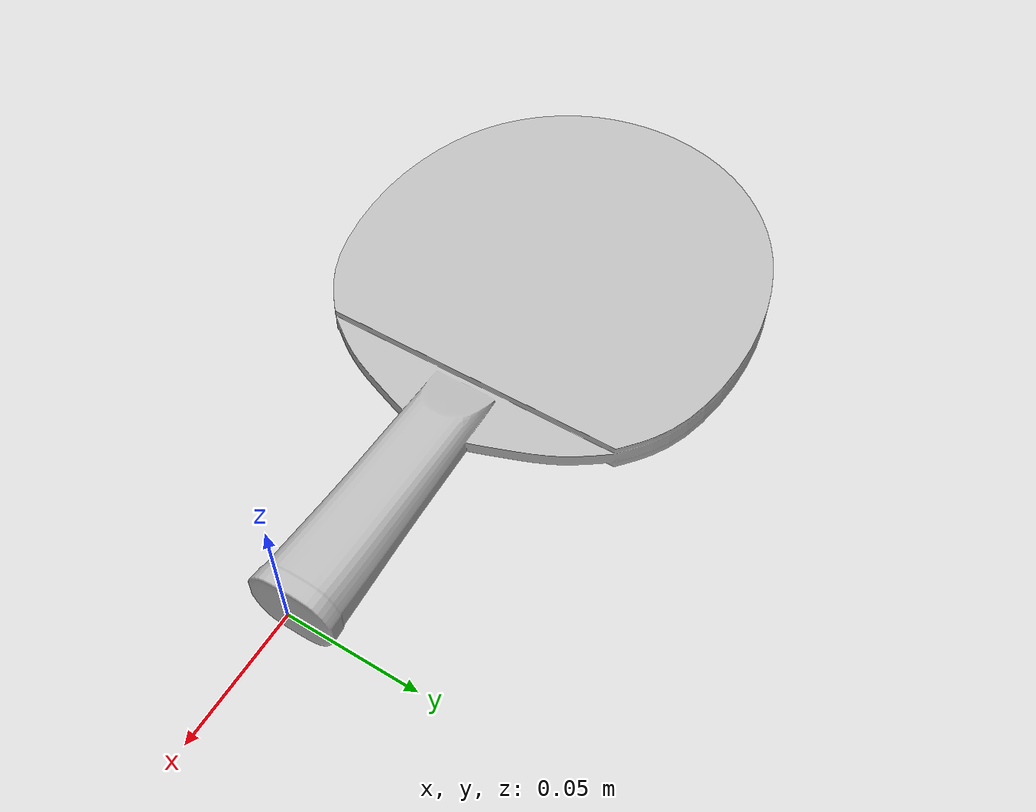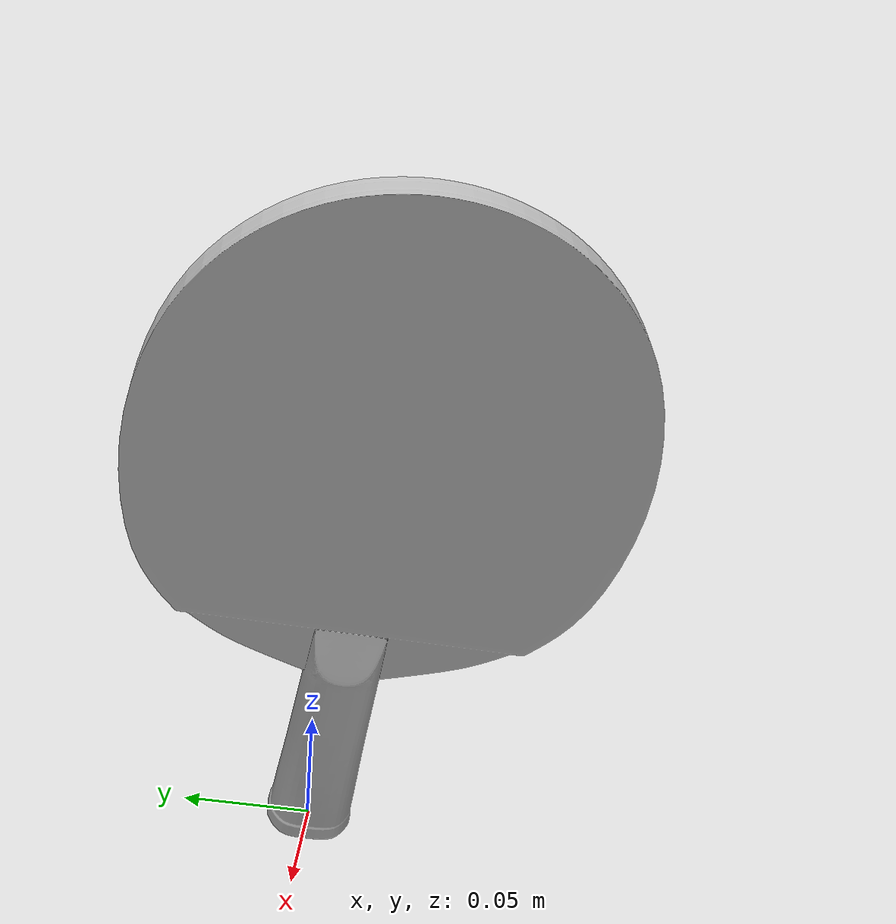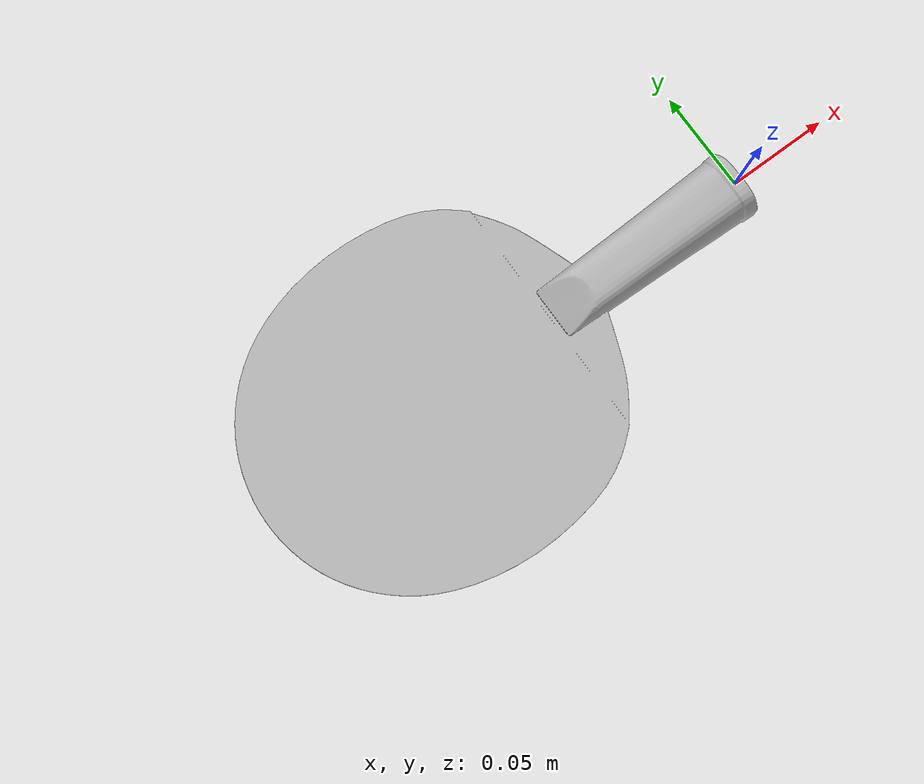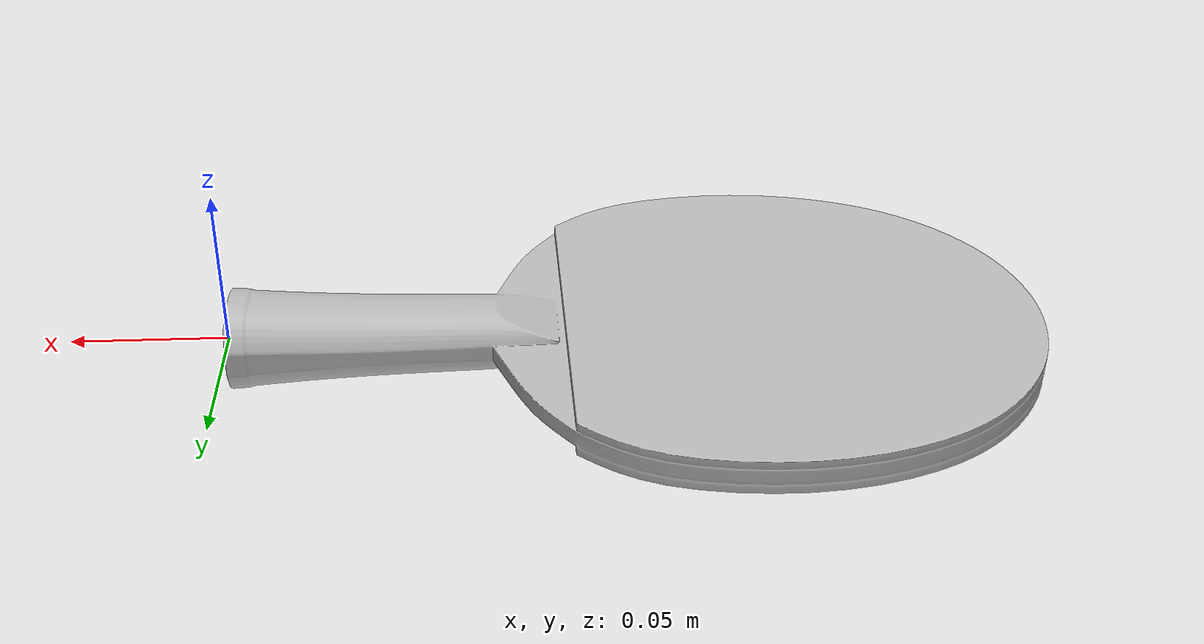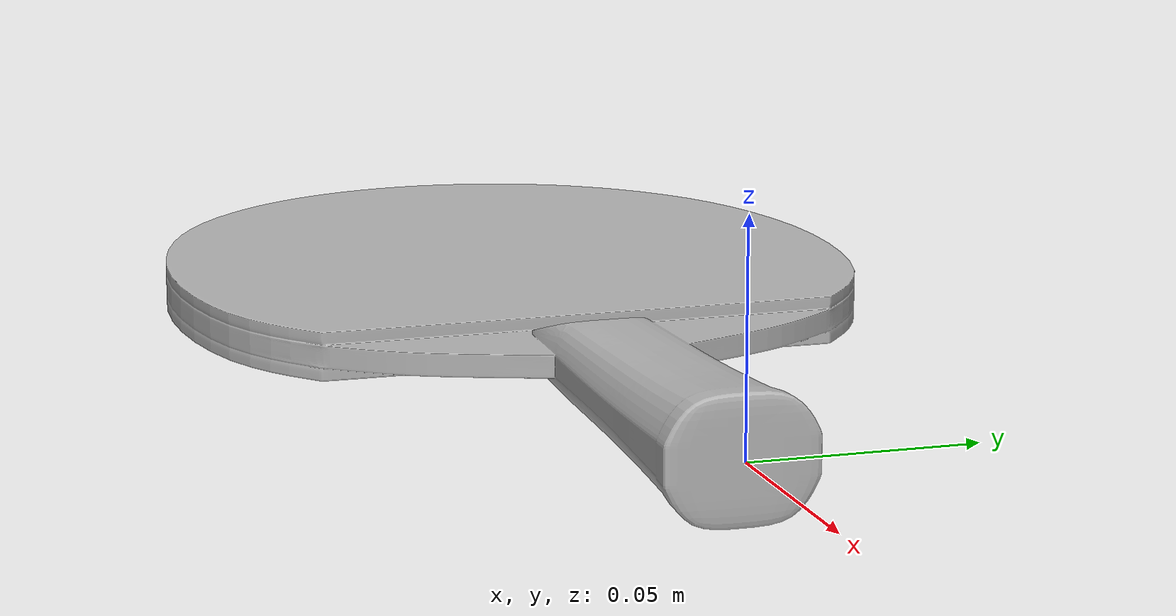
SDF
<?xml version="1.0" ?>
<sdf version="1.5">
  <model name="Paddle">
    <link name="paddle">
      <visual name="visual">
        <geometry>
          <mesh>
            <uri>model://paddle/model.dae</uri>
          </mesh>
        </geometry>
      </visual>
      <collision name="collision">
        <geometry>
          <mesh>
            <uri>model://paddle/model.stl</uri>
          </mesh>
        </geometry>
      </collision>
    </link>
  </model>
</sdf>
